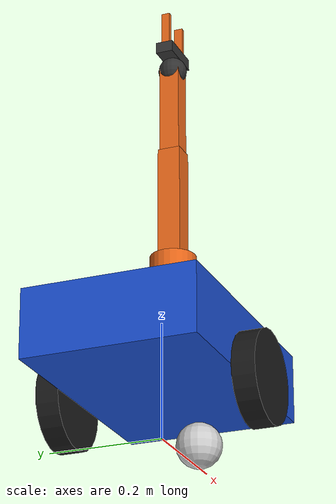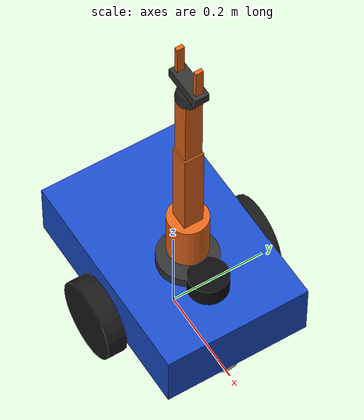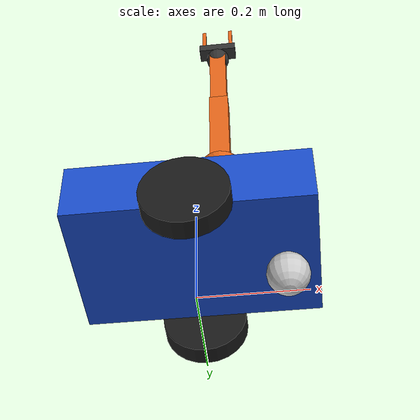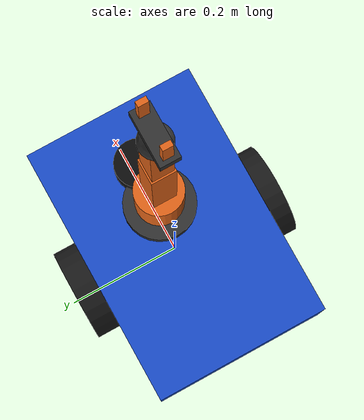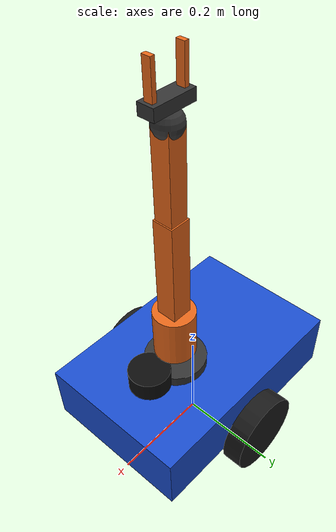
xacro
<?xml version="1.0"?>
<robot xmlns:xacro="http://www.ros.org/wiki/xacro" name="diffbot_arm">

  <!-- 1. 继承基础差速底盘 (包含轮子、万向轮、激光雷达与 IMU) -->
  <xacro:include filename="$(find diffbot_nav2)/urdf/diffbot.urdf.xacro"/>

  <!-- 2. 机械臂基座固接在底盘车体上表面 (Z=+0.12m) -->
  <joint name="arm_base_mount_joint" type="fixed">
    <parent link="base_link"/>
    <child link="arm_base_link"/>
    <origin xyz="0.05 0 ${chassis_height}" rpy="0 0 0"/>
  </joint>

  <!-- Arm Base -->
  <link name="arm_base_link">
    <visual>
      <geometry><cylinder radius="0.06" length="0.04"/></geometry>
      <material name="arm_dark"><color rgba="0.2 0.2 0.2 1.0"/></material>
    </visual>
    <collision>
      <geometry><cylinder radius="0.06" length="0.04"/></geometry>
    </collision>
    <inertial>
      <mass value="0.8"/>
      <inertia ixx="0.001" ixy="0" ixz="0" iyy="0.001" iyz="0" izz="0.001"/>
    </inertial>
  </link>

  <!-- Joint 1: 腰部偏航转动 (Waist Yaw, +/- 180度) -->
  <joint name="arm_joint_1" type="revolute">
    <parent link="arm_base_link"/>
    <child link="arm_link_1"/>
    <origin xyz="0 0 0.04" rpy="0 0 0"/>
    <axis xyz="0 0 1"/>
    <limit lower="-3.1415" upper="3.1415" effort="15.0" velocity="2.0"/>
  </joint>

  <link name="arm_link_1">
    <visual>
      <origin xyz="0 0 0.05" rpy="0 0 0"/>
      <geometry><cylinder radius="0.04" length="0.10"/></geometry>
      <material name="arm_orange"><color rgba="0.9 0.4 0.1 1.0"/></material>
    </visual>
    <collision>
      <origin xyz="0 0 0.05" rpy="0 0 0"/>
      <geometry><cylinder radius="0.04" length="0.10"/></geometry>
    </collision>
    <inertial>
      <mass value="0.6"/>
      <inertia ixx="0.0008" ixy="0" ixz="0" iyy="0.0008" iyz="0" izz="0.0005"/>
    </inertial>
  </link>

  <!-- Joint 2: 肩部俯仰 (Shoulder Pitch) -->
  <joint name="arm_joint_2" type="revolute">
    <parent link="arm_link_1"/>
    <child link="arm_link_2"/>
    <origin xyz="0 0 0.10" rpy="0 0 0"/>
    <axis xyz="0 1 0"/>
    <limit lower="-1.8" upper="1.8" effort="25.0" velocity="1.5"/>
  </joint>

  <link name="arm_link_2">
    <visual>
      <origin xyz="0 0 0.10" rpy="0 0 0"/>
      <geometry><box size="0.04 0.04 0.20"/></geometry>
      <material name="arm_orange"/>
    </visual>
    <collision>
      <origin xyz="0 0 0.10" rpy="0 0 0"/>
      <geometry><box size="0.04 0.04 0.20"/></geometry>
    </collision>
    <inertial>
      <mass value="0.5"/>
      <inertia ixx="0.001" ixy="0" ixz="0" iyy="0.001" iyz="0" izz="0.0002"/>
    </inertial>
  </link>

  <!-- Joint 3: 肘部俯仰 (Elbow Pitch) -->
  <joint name="arm_joint_3" type="revolute">
    <parent link="arm_link_2"/>
    <child link="arm_link_3"/>
    <origin xyz="0 0 0.20" rpy="0 0 0"/>
    <axis xyz="0 1 0"/>
    <limit lower="-2.0" upper="2.0" effort="15.0" velocity="2.0"/>
  </joint>

  <link name="arm_link_3">
    <visual>
      <origin xyz="0 0 0.08" rpy="0 0 0"/>
      <geometry><box size="0.035 0.035 0.16"/></geometry>
      <material name="arm_orange"/>
    </visual>
    <collision>
      <origin xyz="0 0 0.08" rpy="0 0 0"/>
      <geometry><box size="0.035 0.035 0.16"/></geometry>
    </collision>
    <inertial>
      <mass value="0.4"/>
      <inertia ixx="0.0005" ixy="0" ixz="0" iyy="0.0005" iyz="0" izz="0.0001"/>
    </inertial>
  </link>

  <!-- Joint 4: 腕部俯仰 (Wrist Pitch) -->
  <joint name="arm_joint_4" type="revolute">
    <parent link="arm_link_3"/>
    <child link="wrist_pitch_link"/>
    <origin xyz="0 0 0.16" rpy="0 0 0"/>
    <axis xyz="0 1 0"/>
    <limit lower="-1.8" upper="1.8" effort="8.0" velocity="2.5"/>
  </joint>

  <link name="wrist_pitch_link">
    <visual>
      <geometry><sphere radius="0.025"/></geometry>
      <material name="arm_dark"/>
    </visual>
    <collision>
      <geometry><sphere radius="0.025"/></geometry>
    </collision>
    <inertial>
      <mass value="0.2"/>
      <inertia ixx="0.0001" ixy="0" ixz="0" iyy="0.0001" iyz="0" izz="0.0001"/>
    </inertial>
  </link>

  <!-- 3. 平行双指夹爪 (Gripper) -->
  <joint name="gripper_base_joint" type="fixed">
    <parent link="wrist_pitch_link"/>
    <child link="gripper_base_link"/>
    <origin xyz="0 0 0.03" rpy="0 0 0"/>
  </joint>

  <link name="gripper_base_link">
    <visual>
      <geometry><box size="0.08 0.03 0.02"/></geometry>
      <material name="arm_dark"/>
    </visual>
    <collision>
      <geometry><box size="0.08 0.03 0.02"/></geometry>
    </collision>
    <inertial>
      <mass value="0.15"/>
      <inertia ixx="0.00005" ixy="0" ixz="0" iyy="0.00005" iyz="0" izz="0.00005"/>
    </inertial>
  </link>

  <!-- 左指滑轨 (Prismatic) -->
  <joint name="left_finger_joint" type="prismatic">
    <parent link="gripper_base_link"/>
    <child link="left_finger_link"/>
    <origin xyz="0.03 0 0.01" rpy="0 0 0"/>
    <axis xyz="1 0 0"/>
    <limit lower="0.0" upper="0.035" effort="20.0" velocity="0.1"/>
  </joint>

  <link name="left_finger_link">
    <visual>
      <origin xyz="0 0 0.03" rpy="0 0 0"/>
      <geometry><box size="0.008 0.015 0.06"/></geometry>
      <material name="arm_orange"/>
    </visual>
    <collision>
      <origin xyz="0 0 0.03" rpy="0 0 0"/>
      <geometry><box size="0.008 0.015 0.06"/></geometry>
    </collision>
    <inertial>
      <mass value="0.04"/>
      <inertia ixx="0.00001" ixy="0" ixz="0" iyy="0.00001" iyz="0" izz="0.00001"/>
    </inertial>
  </link>

  <!-- 右指滑轨 (对向同步反向闭合) -->
  <joint name="right_finger_joint" type="prismatic">
    <parent link="gripper_base_link"/>
    <child link="right_finger_link"/>
    <origin xyz="-0.03 0 0.01" rpy="0 0 0"/>
    <axis xyz="-1 0 0"/>
    <limit lower="0.0" upper="0.035" effort="20.0" velocity="0.1"/>
  </joint>

  <link name="right_finger_link">
    <visual>
      <origin xyz="0 0 0.03" rpy="0 0 0"/>
      <geometry><box size="0.008 0.015 0.06"/></geometry>
      <material name="arm_orange"/>
    </visual>
    <collision>
      <origin xyz="0 0 0.03" rpy="0 0 0"/>
      <geometry><box size="0.008 0.015 0.06"/></geometry>
    </collision>
    <inertial>
      <mass value="0.04"/>
      <inertia ixx="0.00001" ixy="0" ixz="0" iyy="0.00001" iyz="0" izz="0.00001"/>
    </inertial>
  </link>

  <!-- 4. ros2_control 硬件接口抽象标签 -->
  <ros2_control name="ArmSystem" type="system">
    <hardware>
      <plugin>gz_ros2_control/GazeboSimSystem</plugin>
    </hardware>
    <joint name="arm_joint_1">
      <command_interface name="position"/>
      <state_interface name="position"/>
      <state_interface name="velocity"/>
    </joint>
    <joint name="arm_joint_2">
      <command_interface name="position"/>
      <state_interface name="position"/>
      <state_interface name="velocity"/>
    </joint>
    <joint name="arm_joint_3">
      <command_interface name="position"/>
      <state_interface name="position"/>
      <state_interface name="velocity"/>
    </joint>
    <joint name="arm_joint_4">
      <command_interface name="position"/>
      <state_interface name="position"/>
      <state_interface name="velocity"/>
    </joint>
    <joint name="left_finger_joint">
      <command_interface name="position"/>
      <state_interface name="position"/>
      <state_interface name="velocity"/>
    </joint>
    <joint name="right_finger_joint">
      <command_interface name="position"/>
      <state_interface name="position"/>
      <state_interface name="velocity"/>
    </joint>
    <!-- 驱动轮: 仅状态回读 (由 gz diff-drive 插件直接驱动, 无 command 接口不参与写入) -->
    <!-- 补齐 /joint_states 使 MoveIt CurrentStateMonitor 覆盖全部关节 -->
    <joint name="left_wheel_joint">
      <state_interface name="position"/>
      <state_interface name="velocity"/>
    </joint>
    <joint name="right_wheel_joint">
      <state_interface name="position"/>
      <state_interface name="velocity"/>
    </joint>
  </ros2_control>

</robot>

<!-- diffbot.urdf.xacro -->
<robot xmlns:xacro="http://www.ros.org/wiki/xacro" name="diffbot">

  <!-- 1. 物理参数与惯性张量 (Inertia) 计算宏       -->
  <xacro:property name="chassis_mass"   value="6.0"/> <!-- kg -->
  <xacro:property name="chassis_length" value="0.45"/> <!-- X 方向 (m) -->
  <xacro:property name="chassis_width"  value="0.30"/> <!-- Y 方向 (m) -->
  <xacro:property name="chassis_height" value="0.12"/> <!-- Z 方向 (m) -->

  <xacro:property name="wheel_mass"     value="0.8"/>
  <xacro:property name="wheel_radius"   value="0.08"/> <!-- 8 cm -->
  <xacro:property name="wheel_width"    value="0.04"/> <!-- 4 cm -->
  <xacro:property name="wheel_track"    value="0.34"/> <!-- 轮距 (m) -->

  <xacro:property name="caster_mass"    value="0.3"/>
  <xacro:property name="caster_radius"  value="0.04"/> <!-- 4 cm -->

  <!-- 实用惯性矩阵宏：长方体 -->
  <xacro:macro name="box_inertia" params="m l w h">
    <inertial>
      <mass value="${m}"/>
      <inertia ixx="${(1.0/12.0)*m*(w*w + h*h)}" ixy="0.0" ixz="0.0"
               iyy="${(1.0/12.0)*m*(l*l + h*h)}" iyz="0.0"
               izz="${(1.0/12.0)*m*(l*l + w*w)}"/>
    </inertial>
  </xacro:macro>

  <!-- 实用惯性矩阵宏：圆柱体 (绕 Z 轴旋转对称) -->
  <xacro:macro name="cylinder_inertia" params="m r h">
    <inertial>
      <mass value="${m}"/>
      <inertia ixx="${(1.0/12.0)*m*(3*r*r + h*h)}" ixy="0.0" ixz="0.0"
               iyy="${(1.0/12.0)*m*(3*r*r + h*h)}" iyz="0.0"
               izz="${0.5*m*r*r}"/>
    </inertial>
  </xacro:macro>

  <!-- 2. 坐标基准: base_footprint 与 base_link   -->
  <!-- base_footprint 位于机器人地面水平投影处 (Z=0)，符合 REP-105 规范 -->
  <link name="base_footprint"/>

  <joint name="base_footprint_joint" type="fixed">
    <parent link="base_footprint"/>
    <child link="base_link"/>
    <!-- 将 base_link 抬升至轮子半径高度 -->
    <origin xyz="0 0 ${wheel_radius}" rpy="0 0 0"/>
  </joint>

  <!-- 底盘本体 Link -->
  <link name="base_link">
    <visual>
      <origin xyz="0 0 ${chassis_height/2}" rpy="0 0 0"/>
      <geometry>
        <box size="${chassis_length} ${chassis_width} ${chassis_height}"/>
      </geometry>
      <material name="chassis_blue">
        <color rgba="0.1 0.3 0.8 1.0"/>
      </material>
    </visual>
    <collision>
      <origin xyz="0 0 ${chassis_height/2}" rpy="0 0 0"/>
      <geometry>
        <box size="${chassis_length} ${chassis_width} ${chassis_height}"/>
      </geometry>
    </collision>
    <xacro:box_inertia m="${chassis_mass}" l="${chassis_length}" w="${chassis_width}" h="${chassis_height}"/>
  </link>

  <!-- 3. 左右主动驱动轮 (连续旋转关节)            -->
  <xacro:macro name="wheel" params="prefix y_offset">
    <link name="${prefix}_wheel_link">
      <visual>
        <!-- 默认圆柱沿 Z 轴，旋转 90 度与 Y 轴平行对齐 -->
        <origin xyz="0 0 0" rpy="${pi/2} 0 0"/>
        <geometry>
          <cylinder radius="${wheel_radius}" length="${wheel_width}"/>
        </geometry>
        <material name="rubber_black">
          <color rgba="0.1 0.1 0.1 1.0"/>
        </material>
      </visual>
      <collision>
        <origin xyz="0 0 0" rpy="${pi/2} 0 0"/>
        <geometry>
          <cylinder radius="${wheel_radius}" length="${wheel_width}"/>
        </geometry>
      </collision>
      <xacro:cylinder_inertia m="${wheel_mass}" r="${wheel_radius}" h="${wheel_width}"/>
    </link>

    <joint name="${prefix}_wheel_joint" type="continuous">
      <parent link="base_link"/>
      <child link="${prefix}_wheel_link"/>
      <origin xyz="0 ${y_offset} 0" rpy="0 0 0"/>
      <axis xyz="0 1 0"/> <!-- 绕 Y 轴滚动 -->
    </joint>
  </xacro:macro>

  <xacro:wheel prefix="left"  y_offset="${wheel_track/2}"/>
  <xacro:wheel prefix="right" y_offset="-${wheel_track/2}"/>

  <!-- 4. 前端从动万向支撑轮 (球形)                -->
  <link name="caster_wheel_link">
    <visual>
      <geometry>
        <sphere radius="${caster_radius}"/>
      </geometry>
      <material name="caster_silver">
        <color rgba="0.8 0.8 0.8 1.0"/>
      </material>
    </visual>
    <collision>
      <geometry>
        <sphere radius="${caster_radius}"/>
      </geometry>
    </collision>
    <inertial>
      <mass value="${caster_mass}"/>
      <inertia ixx="${(2.0/5.0)*caster_mass*caster_radius*caster_radius}" ixy="0" ixz="0"
               iyy="${(2.0/5.0)*caster_mass*caster_radius*caster_radius}" iyz="0"
               izz="${(2.0/5.0)*caster_mass*caster_radius*caster_radius}"/>
    </inertial>
  </link>

  <joint name="caster_wheel_joint" type="fixed">
    <parent link="base_link"/>
    <child link="caster_wheel_link"/>
    <!-- 偏置安装在前端，Z 轴落至与地面相切 -->
    <origin xyz="${chassis_length/2 - 0.06} 0 -${wheel_radius - caster_radius}" rpy="0 0 0"/>
  </joint>

  <!-- 5. 2D 激光雷达传感器 Link                   -->
  <link name="laser_link">
    <visual>
      <geometry>
        <cylinder radius="0.04" length="0.04"/>
      </geometry>
      <material name="lidar_black">
        <color rgba="0.05 0.05 0.05 1.0"/>
      </material>
    </visual>
    <collision>
      <geometry>
        <cylinder radius="0.04" length="0.04"/>
      </geometry>
    </collision>
    <inertial>
      <mass value="0.2"/>
      <inertia ixx="0.0001" ixy="0" ixz="0" iyy="0.0001" iyz="0" izz="0.0001"/>
    </inertial>
  </link>

  <joint name="laser_joint" type="fixed">
    <parent link="base_link"/>
    <child link="laser_link"/>
    <origin xyz="0.12 0 ${chassis_height + 0.02}" rpy="0 0 0"/>
  </joint>

  <!-- 6. 6 轴 IMU 惯导单元 Link (中心刚体安装)   -->
  <link name="imu_link">
    <visual>
      <geometry>
        <box size="0.02 0.02 0.005"/>
      </geometry>
      <material name="imu_red">
        <color rgba="0.9 0.1 0.1 1.0"/>
      </material>
    </visual>
    <collision>
      <geometry>
        <box size="0.02 0.02 0.005"/>
      </geometry>
    </collision>
    <inertial>
      <mass value="0.05"/>
      <inertia ixx="0.00001" ixy="0" ixz="0" iyy="0.00001" iyz="0" izz="0.00001"/>
    </inertial>
  </link>

  <joint name="imu_joint" type="fixed">
    <parent link="base_link"/>
    <child link="imu_link"/>
    <!-- 安装在机器人几何与旋转质心处 -->
    <origin xyz="0 0 0.05" rpy="0 0 0"/>
  </joint>

  <!-- 引入 Gazebo 插件与材质定义 -->
  <xacro:include filename="$(find diffbot_nav2)/urdf/diffbot_gazebo.xacro"/>

</robot>
